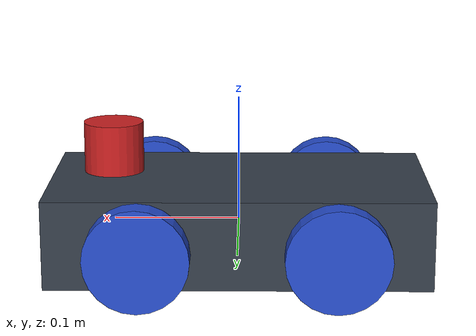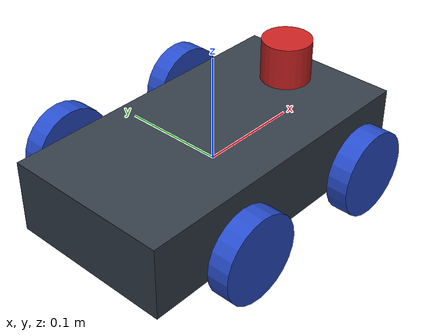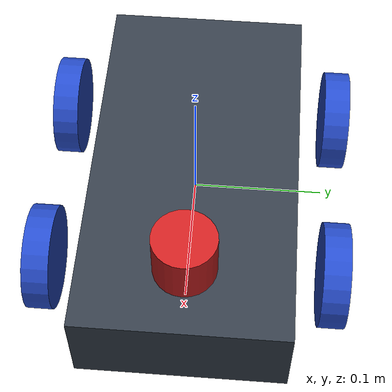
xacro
<?xml version="1.0" ?>
<robot name="m2wr" xmlns:xacro="http://www.ros.org/wiki/xacro">

  <xacro:include filename="$(find m2wr_description)/urdf/materials.xacro" />
  <xacro:include filename="$(find m2wr_description)/urdf/m2wr.gazebo" />
  <xacro:include filename="$(find m2wr_description)/urdf/macros.xacro" />

  <link name="link_chassis">
    <!-- pose and inertial -->
    <pose>0 0 0.1 0 0 0</pose>
    <inertial>
      <mass value="5"/>
      <origin rpy="0 0 0" xyz="0 0 0.1"/>
      <inertia ixx="0.0127083333333" ixy="0" ixz="0"
    iyy="0.0395416666667" iyz="0" izz="0.385666666667"/>
    </inertial>
    <!-- body -->
    <collision name="collision_chassis">
      <geometry>
        <box size="0.3 0.16 0.07"/>
      </geometry>
    </collision>
    <visual>
      <origin rpy="0 0 0" xyz="0 0 0"/>
      <geometry>
        <box size="0.3 0.16 0.07"/>
      </geometry>
      <material name="blue"/>
    </visual>
  </link>

  <!-- laser -->
  <link name="sensor_laser">
    <inertial>
      <origin xyz="0 0 0" rpy="0 0 0" />
      <mass value="1" />
      <xacro:cylinder_inertia mass="1" r="0.02375" l="0.04" />
    </inertial>

    <visual>
      <origin xyz="0 0 0" rpy="0 0 0" />
      <geometry>
        <cylinder radius="0.02375" length="0.04"/>
      </geometry>
      <material name="red" />
    </visual>

    <collision>
      <origin xyz="0 0 0" rpy="0 0 0"/>
      <geometry>
        <cylinder radius="0.02375" length="0.04"/>
      </geometry>
    </collision>
  </link>

  <joint name="joint_sensor_laser" type="fixed">
    <origin xyz="0.10 0 0.06" rpy="0 0 0"/>
    <parent link="link_chassis"/>
    <child link="sensor_laser"/>
  </joint>

  <xacro:link_wheel name="link_back_right_wheel" />
  <xacro:joint_wheel name="joint_back_right_wheel"
      child="link_back_right_wheel" origin_xyz="-0.075 0.11 0" />

  <xacro:link_wheel name="link_back_left_wheel" />
  <xacro:joint_wheel name="joint_back_left_wheel"
      child="link_back_left_wheel" origin_xyz="-0.075 -0.11 0" />

  <xacro:link_wheel name="link_front_right_wheel" />
  <xacro:joint_wheel name="joint_front_right_wheel"
      child="link_front_right_wheel" origin_xyz="0.075 0.11 0" />

  <xacro:link_wheel name="link_front_left_wheel" />
  <xacro:joint_wheel name="joint_front_left_wheel"
      child="link_front_left_wheel" origin_xyz="0.075 -0.11 0" />
</robot>

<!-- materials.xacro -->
<robot xmlns:xacro="http://www.ros.org/wiki/xacro">
  <material name="black">
    <color rgba="0.0 0.0 0.0 1.0"/>
  </material>
  <material name="blue">
    <color rgba="0.203125 0.23828125 0.28515625 1.0"/>
  </material>
  <material name="green">
    <color rgba="0.0 0.8 0.0 1.0"/>
  </material>
  <material name="grey">
    <color rgba="0.2 0.2 0.2 1.0"/>
  </material>
  <material name="orange">
    <color rgba="1.0 0.423529411765 0.0392156862745 1.0"/>
  </material>
  <material name="brown">
    <color rgba="0.870588235294 0.811764705882 0.764705882353 1.0"/>
  </material>
  <material name="red">
    <color rgba="0.80078125 0.12890625 0.1328125 1.0"/>
  </material>
  <material name="white">
    <color rgba="1.0 1.0 1.0 1.0"/>
  </material>
  <material name="Cyan">
       <color rgba="0 1.0 1.0 1.0"/>
     </material>

</robot>

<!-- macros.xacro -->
<robot xmlns:xacro="http://www.ros.org/wiki/xacro">
    <xacro:macro name="link_wheel" params="name">
        <link name="${name}">
            <inertial>
              <mass value="0.2"/>
              <origin rpy="0 1.5707 1.5707" xyz="0 0 0"/>
              <inertia ixx="0.0000866666666667" ixy="0" ixz="0" iyy="0.0000866666666667" iyz="0" izz="0.00016"/>
            </inertial>
            <collision name="link_back_right_wheel_collision">
              <origin rpy="0 1.5707 1.5707" xyz="0 0 0"/>
              <geometry>
                <cylinder length="0.02" radius="0.04"/>
              </geometry>
            </collision>
            <visual name="${name}_visual">
              <origin rpy="0 1.5707 1.5707" xyz="0 0 0"/>
              <geometry>
                <cylinder length="0.02" radius="0.04"/>
              </geometry>
            </visual>
        </link>
    </xacro:macro>

    <xacro:macro name="joint_wheel" params="name child origin_xyz ">
      <joint name="${name}" type="continuous">
        <origin rpy="0 0 0" xyz="${origin_xyz}"/>
        <child link="${child}"/>
        <parent link="link_chassis"/>
        <axis rpy="0 0 0" xyz="0 1 0"/>
        <limit effort="10000" velocity="1000"/>
        <joint_properties damping="1.0" friction="1.0"/>
      </joint>
    </xacro:macro>

    <xacro:macro name="cylinder_inertia" params="mass r l">
      <inertia  ixx="${mass*(3*r*r+l*l)/12}" ixy = "0" ixz = "0"
                iyy="${mass*(3*r*r+l*l)/12}" iyz = "0"
                izz="${mass*(r*r)/2}" />
    </xacro:macro>
</robot>
